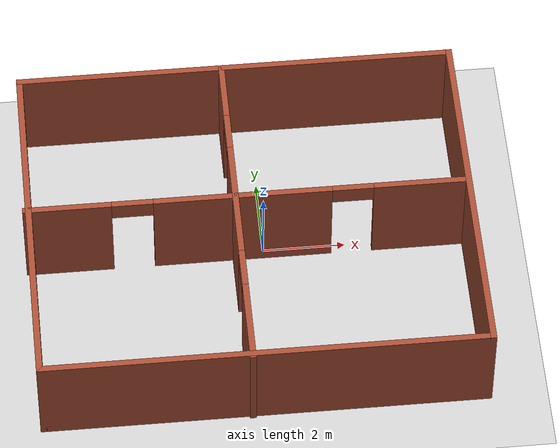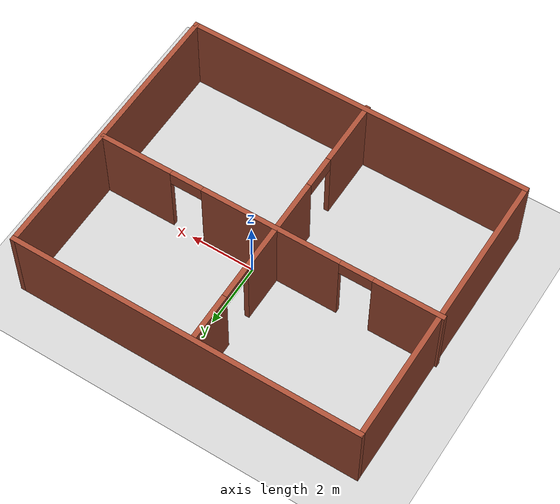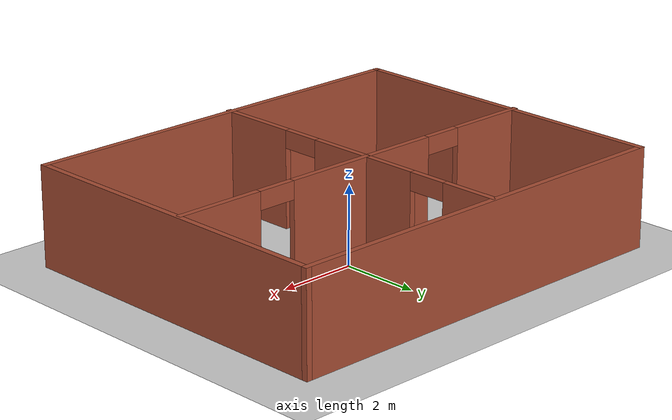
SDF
<sdf version="1.6">
 <world name="default">
  <light name="sun" type="directional">
   <pose>0 0 10 0 -0 0</pose>
   <diffuse>0.8 0.8 0.8 1</diffuse>
   <specular>0.2 0.2 0.2 1</specular>
   <attenuation>
    <range>1000</range>
    <constant>0.9</constant>
    <linear>0.01</linear>
    <quadratic>0.001</quadratic>
   </attenuation>
   <direction>-0.5 0.1 -0.9</direction>
   <spot><inner_angle>0</inner_angle><outer_angle>0</outer_angle><falloff>0</falloff></spot>
  </light>
  <model name="ground_plane">
   <static>1</static>
   <link name="link">
    <collision name="collision">
     <geometry><plane><normal>0 0 1</normal><size>100 100</size></plane></geometry>
     <surface>
      <contact><collide_bitmask>65535</collide_bitmask></contact>
      <friction><ode><mu>100</mu><mu2>50</mu2></ode></friction>
     </surface>
    </collision>
    <visual name="visual">
     <cast_shadows>0</cast_shadows>
     <geometry><plane><normal>0 0 1</normal><size>100 100</size></plane></geometry>
     <material>
      <script><uri>file://media/materials/scripts/gazebo.material</uri><name>Gazebo/Grey</name></script>
     </material>
    </visual>
   </link>
  </model>
  <gravity>0 0 -9.8</gravity>
  <magnetic_field>6e-06 2.3e-05 -4.2e-05</magnetic_field>
  <atmosphere type="adiabatic"/>
  <physics name="default_physics" default="0" type="ode">
   <max_step_size>0.001</max_step_size>
   <real_time_factor>1</real_time_factor>
   <real_time_update_rate>1000</real_time_update_rate>
  </physics>
  <scene><ambient>0.4 0.4 0.4 1</ambient><background>0.7 0.7 0.7 1</background><shadows>1</shadows></scene>
  <spherical_coordinates>
   <surface_model>EARTH_WGS84</surface_model>
   <latitude_deg>0</latitude_deg>
   <longitude_deg>0</longitude_deg>
   <elevation>0</elevation>
   <heading_deg>0</heading_deg>
  </spherical_coordinates>
  <model name="walls">
   <pose>-0.388479 -0.493866 0 0 -0 0</pose>
   <link name="Wall_10">
    <pose>-0.03378 0.357063 0 0 -0 0</pose>
    <visual name="Wall_10_Visual_0">
     <pose>-4.30849 0 1.25 0 -0 0</pose>
     <geometry><box><size>2.13303 0.15 2.5</size></box></geometry>
     <material>
      <script><uri>file://media/materials/scripts/gazebo.material</uri><name>Gazebo/Bricks</name></script>
      <ambient>1 1 1 1</ambient>
     </material>
     <meta><layer>0</layer></meta>
    </visual>
    <collision name="Wall_10_Collision_0">
     <geometry><box><size>2.13303 0.15 2.5</size></box></geometry>
     <pose>-4.30849 0 1.25 0 -0 0</pose>
    </collision>
    <visual name="Wall_10_Visual_1">
     <pose>-0.085722 0 1.25 0 -0 0</pose>
     <geometry><box><size>4.3125 0.15 2.5</size></box></geometry>
     <material>
      <script><uri>file://media/materials/scripts/gazebo.material</uri><name>Gazebo/Bricks</name></script>
      <ambient>1 1 1 1</ambient>
     </material>
     <meta><layer>0</layer></meta>
    </visual>
    <collision name="Wall_10_Collision_1">
     <geometry><box><size>4.3125 0.15 2.5</size></box></geometry>
     <pose>-0.085722 0 1.25 0 -0 0</pose>
    </collision>
    <visual name="Wall_10_Visual_2">
     <pose>4.22276 0 1.25 0 -0 0</pose>
     <geometry><box><size>2.30447 0.15 2.5</size></box></geometry>
     <material>
      <script><uri>file://media/materials/scripts/gazebo.material</uri><name>Gazebo/Bricks</name></script>
      <ambient>1 1 1 1</ambient>
     </material>
     <meta><layer>0</layer></meta>
    </visual>
    <collision name="Wall_10_Collision_2">
     <geometry><box><size>2.30447 0.15 2.5</size></box></geometry>
     <pose>4.22276 0 1.25 0 -0 0</pose>
    </collision>
    <visual name="Wall_10_Visual_3">
     <pose>-2.74197 0 2.275 0 -0 0</pose>
     <geometry><box><size>1 0.15 0.45</size></box></geometry>
     <material>
      <script><uri>file://media/materials/scripts/gazebo.material</uri><name>Gazebo/Bricks</name></script>
      <ambient>1 1 1 1</ambient>
     </material>
     <meta><layer>0</layer></meta>
    </visual>
    <collision name="Wall_10_Collision_3">
     <geometry><box><size>1 0.15 0.45</size></box></geometry>
     <pose>-2.74197 0 2.275 0 -0 0</pose>
    </collision>
    <visual name="Wall_10_Visual_4">
     <pose>2.57053 0 2.275 0 -0 0</pose>
     <geometry><box><size>1 0.15 0.45</size></box></geometry>
     <material>
      <script><uri>file://media/materials/scripts/gazebo.material</uri><name>Gazebo/Bricks</name></script>
      <ambient>1 1 1 1</ambient>
     </material>
     <meta><layer>0</layer></meta>
    </visual>
    <collision name="Wall_10_Collision_4">
     <geometry><box><size>1 0.15 0.45</size></box></geometry>
     <pose>2.57053 0 2.275 0 -0 0</pose>
    </collision>
   </link>
   <link name="Wall_3">
    <collision name="Wall_3_Collision">
     <geometry><box><size>10.75 0.15 2.5</size></box></geometry>
     <pose>0 0 1.25 0 -0 0</pose>
    </collision>
    <visual name="Wall_3_Visual">
     <pose>0 0 1.25 0 -0 0</pose>
     <geometry><box><size>10.75 0.15 2.5</size></box></geometry>
     <material>
      <script><uri>file://media/materials/scripts/gazebo.material</uri><name>Gazebo/Bricks</name></script>
      <ambient>1 1 1 1</ambient>
     </material>
     <meta><layer>0</layer></meta>
    </visual>
    <pose>0.03378 -4.27484 0 0 -0 0</pose>
   </link>
   <link name="Wall_4">
    <collision name="Wall_4_Collision">
     <geometry><box><size>8.75 0.15 2.5</size></box></geometry>
     <pose>0 0 1.25 0 -0 0</pose>
    </collision>
    <visual name="Wall_4_Visual">
     <pose>0 0 1.25 0 -0 0</pose>
     <geometry><box><size>8.75 0.15 2.5</size></box></geometry>
     <material>
      <script><uri>file://media/materials/scripts/gazebo.material</uri><name>Gazebo/Bricks</name></script>
      <ambient>1 1 1 1</ambient>
     </material>
     <meta><layer>0</layer></meta>
    </visual>
    <pose>5.33378 0.025162 0 0 -0 1.5708</pose>
   </link>
   <link name="Wall_5">
    <collision name="Wall_5_Collision">
     <geometry><box><size>10.75 0.15 2.5</size></box></geometry>
     <pose>0 0 1.25 0 -0 0</pose>
    </collision>
    <visual name="Wall_5_Visual">
     <pose>0 0 1.25 0 -0 0</pose>
     <geometry><box><size>10.75 0.15 2.5</size></box></geometry>
     <material>
      <script><uri>file://media/materials/scripts/gazebo.material</uri><name>Gazebo/Bricks</name></script>
      <ambient>1 1 1 1</ambient>
     </material>
     <meta><layer>0</layer></meta>
    </visual>
    <pose>0.03378 4.32516 0 0 -0 3.14159</pose>
   </link>
   <link name="Wall_6">
    <collision name="Wall_6_Collision">
     <geometry><box><size>8.75 0.15 2.5</size></box></geometry>
     <pose>0 0 1.25 0 -0 0</pose>
    </collision>
    <visual name="Wall_6_Visual">
     <pose>0 0 1.25 0 -0 0</pose>
     <geometry><box><size>8.75 0.15 2.5</size></box></geometry>
     <material>
      <script><uri>file://media/materials/scripts/gazebo.material</uri><name>Gazebo/Bricks</name></script>
      <ambient>1 1 1 1</ambient>
     </material>
     <meta><layer>0</layer></meta>
    </visual>
    <pose>-5.26622 0.025162 0 0 -0 -1.5708</pose>
   </link>
   <link name="Wall_8">
    <pose>-0.296642 -0.025163 0 0 -0 -1.5708</pose>
    <visual name="Wall_8_Visual_0">
     <pose>-3.61464 0 1.25 0 -0 0</pose>
     <geometry><box><size>1.52072 0.15 2.5</size></box></geometry>
     <material>
      <script><uri>file://media/materials/scripts/gazebo.material</uri><name>Gazebo/Bricks</name></script>
      <ambient>1 1 1 1</ambient>
     </material>
     <meta><layer>0</layer></meta>
    </visual>
    <collision name="Wall_8_Collision_0">
     <geometry><box><size>1.52072 0.15 2.5</size></box></geometry>
     <pose>-3.61464 0 1.25 0 -0 0</pose>
    </collision>
    <visual name="Wall_8_Visual_1">
     <pose>-0.299071 0 1.25 0 -0 0</pose>
     <geometry><box><size>3.11042 0.15 2.5</size></box></geometry>
     <material>
      <script><uri>file://media/materials/scripts/gazebo.material</uri><name>Gazebo/Bricks</name></script>
      <ambient>1 1 1 1</ambient>
     </material>
     <meta><layer>0</layer></meta>
    </visual>
    <collision name="Wall_8_Collision_1">
     <geometry><box><size>3.11042 0.15 2.5</size></box></geometry>
     <pose>-0.299071 0 1.25 0 -0 0</pose>
    </collision>
    <visual name="Wall_8_Visual_2">
     <pose>3.31557 0 1.25 0 -0 0</pose>
     <geometry><box><size>2.11886 0.15 2.5</size></box></geometry>
     <material>
      <script><uri>file://media/materials/scripts/gazebo.material</uri><name>Gazebo/Bricks</name></script>
      <ambient>1 1 1 1</ambient>
     </material>
     <meta><layer>0</layer></meta>
    </visual>
    <collision name="Wall_8_Collision_2">
     <geometry><box><size>2.11886 0.15 2.5</size></box></geometry>
     <pose>3.31557 0 1.25 0 -0 0</pose>
    </collision>
    <visual name="Wall_8_Visual_3">
     <pose>-2.35428 0 2.275 0 -0 0</pose>
     <geometry><box><size>1 0.15 0.45</size></box></geometry>
     <material>
      <script><uri>file://media/materials/scripts/gazebo.material</uri><name>Gazebo/Bricks</name></script>
      <ambient>1 1 1 1</ambient>
     </material>
     <meta><layer>0</layer></meta>
    </visual>
    <collision name="Wall_8_Collision_3">
     <geometry><box><size>1 0.15 0.45</size></box></geometry>
     <pose>-2.35428 0 2.275 0 -0 0</pose>
    </collision>
    <visual name="Wall_8_Visual_4">
     <pose>1.75614 0 2.275 0 -0 0</pose>
     <geometry><box><size>1 0.15 0.45</size></box></geometry>
     <material>
      <script><uri>file://media/materials/scripts/gazebo.material</uri><name>Gazebo/Bricks</name></script>
      <ambient>1 1 1 1</ambient>
     </material>
     <meta><layer>0</layer></meta>
    </visual>
    <collision name="Wall_8_Collision_4">
     <geometry><box><size>1 0.15 0.45</size></box></geometry>
     <pose>1.75614 0 2.275 0 -0 0</pose>
    </collision>
   </link>
   <static>1</static>
  </model>
  <audio><device>default</device></audio>
 </world>
</sdf>
